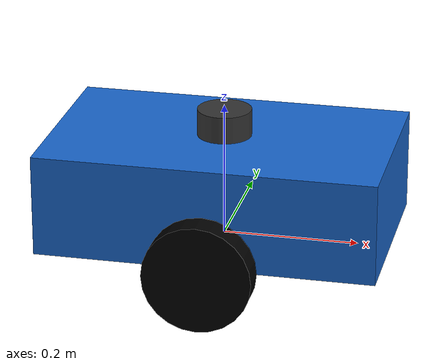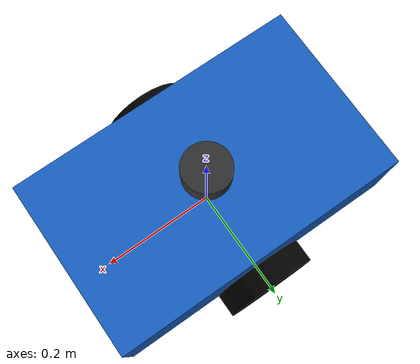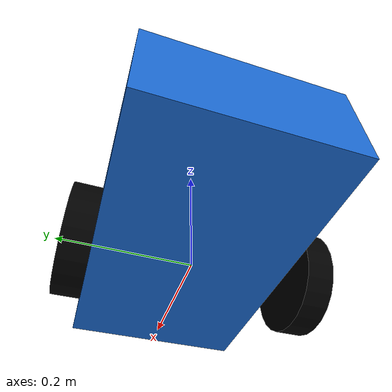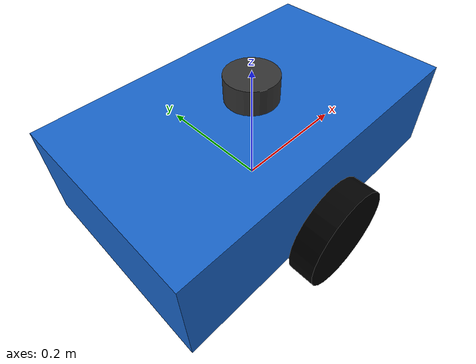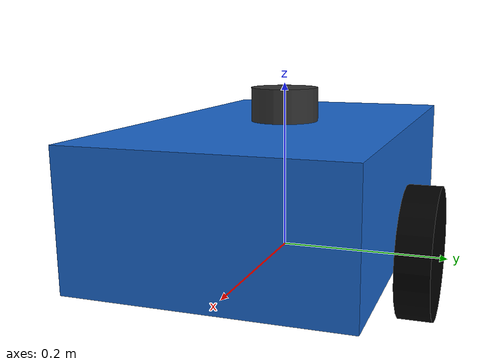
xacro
<?xml version="1.0"?>
<robot name="avps_robot" xmlns:xacro="http://www.ros.org/wiki/xacro">

  <xacro:property name="base_length"   value="0.5"/>
  <xacro:property name="base_width"    value="0.3"/>
  <xacro:property name="base_height"   value="0.15"/>
  <xacro:property name="wheel_radius"  value="0.08"/>
  <xacro:property name="wheel_width"   value="0.04"/>
  <xacro:property name="wheel_sep"     value="0.34"/>
  <xacro:property name="caster_radius" value="0.03"/>
  <xacro:property name="lidar_radius"  value="0.04"/>
  <xacro:property name="lidar_height"  value="0.04"/>

  <!-- ═══════════════════════════════════════════════════════════
       MATERIALS
  ════════════════════════════════════════════════════════════════ -->
  <material name="dark_grey">
    <color rgba="0.2 0.2 0.2 1.0"/>
  </material>
  <material name="light_grey">
    <color rgba="0.7 0.7 0.7 1.0"/>
  </material>
  <material name="blue">
    <color rgba="0.1 0.4 0.8 1.0"/>
  </material>
  <material name="black">
    <color rgba="0.0 0.0 0.0 1.0"/>
  </material>

  <link name="base_footprint"/>

  <joint name="base_footprint_joint" type="fixed">
    <parent link="base_footprint"/>
    <child  link="base_link"/>
    <origin xyz="0 0 ${wheel_radius}" rpy="0 0 0"/>
  </joint>

  <link name="base_link">
    <visual>
      <geometry>
        <box size="${base_length} ${base_width} ${base_height}"/>
      </geometry>
      <material name="blue"/>
    </visual>
    <collision>
      <geometry>
        <box size="${base_length} ${base_width} ${base_height}"/>
      </geometry>
    </collision>
    <inertial>
      <mass value="10.0"/>
      <inertia
        ixx="0.0833"  ixy="0.0" ixz="0.0"
        iyy="0.2083"  iyz="0.0"
        izz="0.2500"/>
    </inertial>
  </link>

  <!-- ═══════════════════════════════════════════════════════════
       WHEEL MACRO
       Reusable macro for left and right wheels
  ════════════════════════════════════════════════════════════════ -->
  <xacro:macro name="wheel" params="name y_reflect">
    <link name="${name}_wheel_link">
      <visual>
        <geometry>
          <cylinder radius="${wheel_radius}" length="${wheel_width}"/>
        </geometry>
        <material name="black"/>
      </visual>
      <collision>
        <geometry>
          <cylinder radius="${wheel_radius}" length="${wheel_width}"/>
        </geometry>
      </collision>
      <inertial>
        <mass value="0.5"/>
        <inertia
          ixx="0.0013" ixy="0.0" ixz="0.0"
          iyy="0.0013" iyz="0.0"
          izz="0.0016"/>
      </inertial>
    </link>

    <joint name="${name}_wheel_joint" type="continuous">
      <parent link="base_link"/>
      <child  link="${name}_wheel_link"/>
      <origin
        xyz="0.0 ${y_reflect * wheel_sep / 2.0} ${-base_height / 2.0}"
        rpy="${-pi/2} 0 0"/>
      <axis xyz="0 0 1"/>
      <dynamics damping="0.1" friction="0.1"/>
    </joint>
  </xacro:macro>

  <xacro:wheel name="left"  y_reflect=" 1"/>
  <xacro:wheel name="right" y_reflect="-1"/>

  <!-- ═══════════════════════════════════════════════════════════
       CASTER WHEEL
       Passive wheel at the front for balance
  ════════════════════════════════════════════════════════════════ -->
  <link name="caster_link">
    <visual>
      <geometry>
        <sphere radius="${caster_radius}"/>
      </geometry>
      <material name="light_grey"/>
    </visual>
    <collision>
      <geometry>
        <sphere radius="${caster_radius}"/>
      </geometry>
    </collision>
    <inertial>
      <mass value="0.1"/>
      <inertia
        ixx="0.0001" ixy="0.0" ixz="0.0"
        iyy="0.0001" iyz="0.0"
        izz="0.0001"/>
    </inertial>
  </link>

  <joint name="caster_joint" type="fixed">
    <parent link="base_link"/>
    <child  link="caster_link"/>
    <origin
      xyz="${base_length/2 - caster_radius}
           0
           ${-base_height/2 - caster_radius + wheel_radius}"
      rpy="0 0 0"/>
  </joint>

  <!-- ═══════════════════════════════════════════════════════════
       2D LIDAR
       Primary sensor for SLAM and obstacle detection.
  ════════════════════════════════════════════════════════════════ -->
  <link name="lidar_link">
    <visual>
      <geometry>
        <cylinder radius="${lidar_radius}" length="${lidar_height}"/>
      </geometry>
      <material name="dark_grey"/>
    </visual>
    <collision>
      <geometry>
        <cylinder radius="${lidar_radius}" length="${lidar_height}"/>
      </geometry>
    </collision>
    <inertial>
      <mass value="0.1"/>
      <inertia
        ixx="0.0001" ixy="0.0" ixz="0.0"
        iyy="0.0001" iyz="0.0"
        izz="0.0001"/>
    </inertial>
  </link>

  <joint name="lidar_joint" type="fixed">
    <parent link="base_link"/>
    <child  link="lidar_link"/>
    <origin
      xyz="0.0 0.0 ${base_height/2 + lidar_height/2}"
      rpy="0 0 0"/>
  </joint>

  <gazebo>
    <plugin filename="gz-sim-diff-drive-system"
            name="gz::sim::systems::DiffDrive">
      <left_joint>left_wheel_joint</left_joint>
      <right_joint>right_wheel_joint</right_joint>
      <wheel_separation>${wheel_sep}</wheel_separation>
      <wheel_radius>${wheel_radius}</wheel_radius>
      <odom_publish_frequency>50</odom_publish_frequency>
      <topic>/cmd_vel</topic>
      <odom_topic>/odom</odom_topic>
      <tf_topic>/tf</tf_topic>
      <frame_id>odom</frame_id>
      <child_frame_id>base_footprint</child_frame_id>
      <max_linear_acceleration>1.0</max_linear_acceleration>
      <min_linear_acceleration>-1.0</min_linear_acceleration>
      <max_angular_acceleration>2.0</max_angular_acceleration>
      <min_angular_acceleration>-2.0</min_angular_acceleration>
    </plugin>
  </gazebo>

  <!-- Joint State Publisher Plugin (Gz Harmonic native)
       Publishes wheel joint positions for robot_state_publisher -->
  <gazebo>
    <plugin filename="gz-sim-joint-state-publisher-system"
            name="gz::sim::systems::JointStatePublisher">
      <topic>/joint_states</topic>
    </plugin>
  </gazebo>

  <!-- 2D LiDAR Sensor (Gazebo Harmonic native)
       Publishes Gz topic: /scan (LaserScan)
       Bridged to ROS 2 /scan by ros_gz_bridge -->
  <gazebo reference="lidar_link">
    <sensor name="lidar_sensor" type="lidar">
      <topic>/scan</topic>
      <gz_frame_id>lidar_link</gz_frame_id>
      <update_rate>10</update_rate>
      <lidar>
        <scan>
          <horizontal>
            <samples>360</samples>
            <resolution>1</resolution>
            <min_angle>-3.14159</min_angle>
            <max_angle>3.14159</max_angle>
          </horizontal>
          <vertical>
            <samples>1</samples>
            <min_angle>0</min_angle>
            <max_angle>0</max_angle>
          </vertical>
        </scan>
        <range>
          <min>0.15</min>
          <max>12.0</max>
          <resolution>0.01</resolution>
        </range>
        <noise>
          <type>gaussian</type>
          <mean>0.0</mean>
          <stddev>0.01</stddev>
        </noise>
      </lidar>
      <always_on>1</always_on>
      <visualize>true</visualize>
    </sensor>
  </gazebo>

  <!-- Base link material for Gazebo -->
  <gazebo reference="base_link">
    <material>
      <ambient>0.1 0.4 0.8 1</ambient>
      <diffuse>0.1 0.4 0.8 1</diffuse>
    </material>
  </gazebo>

</robot>
